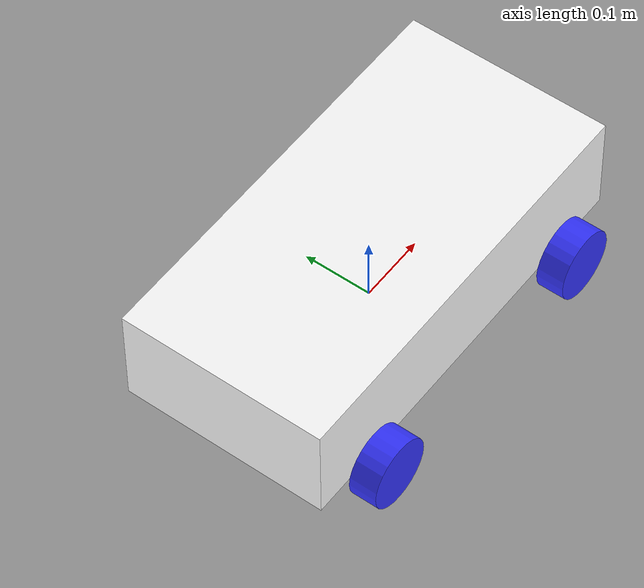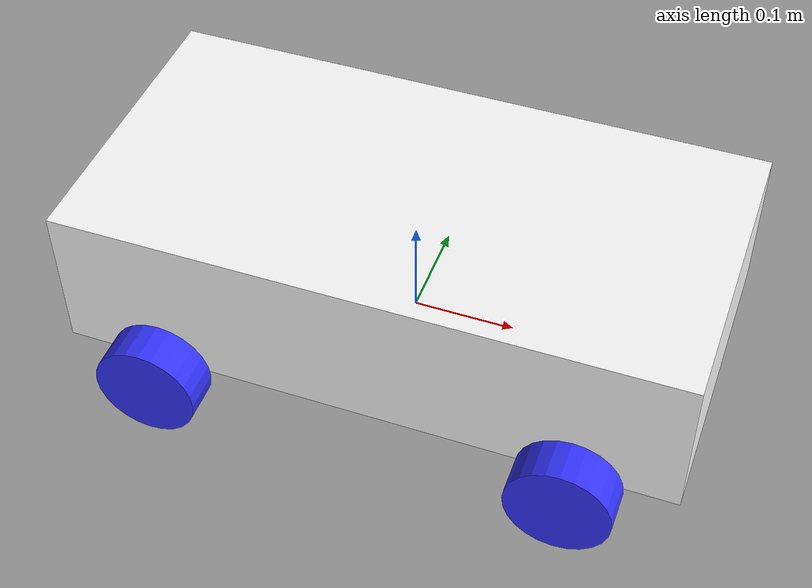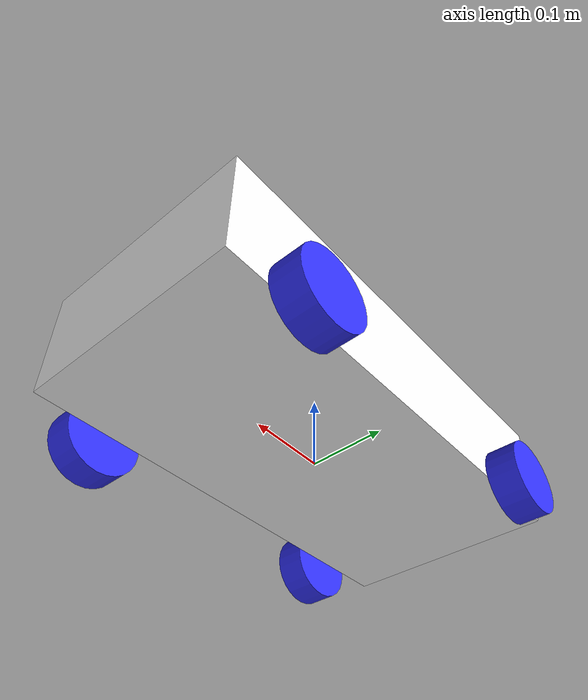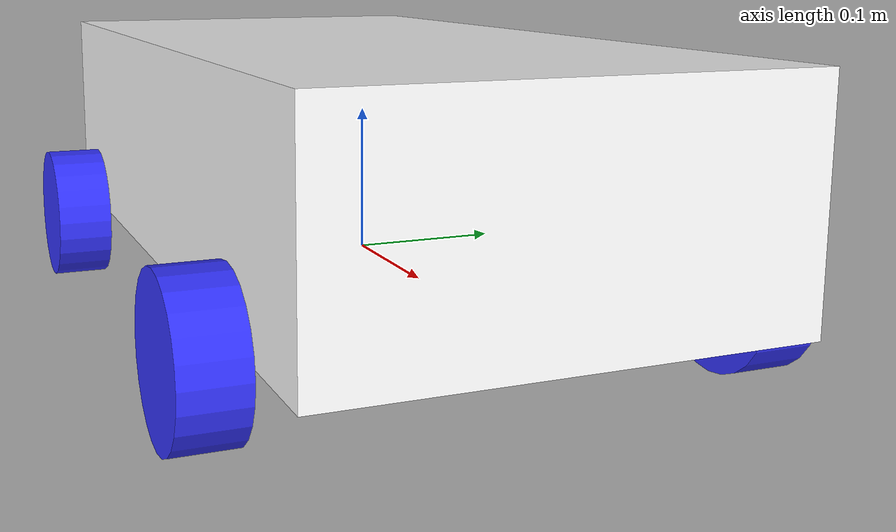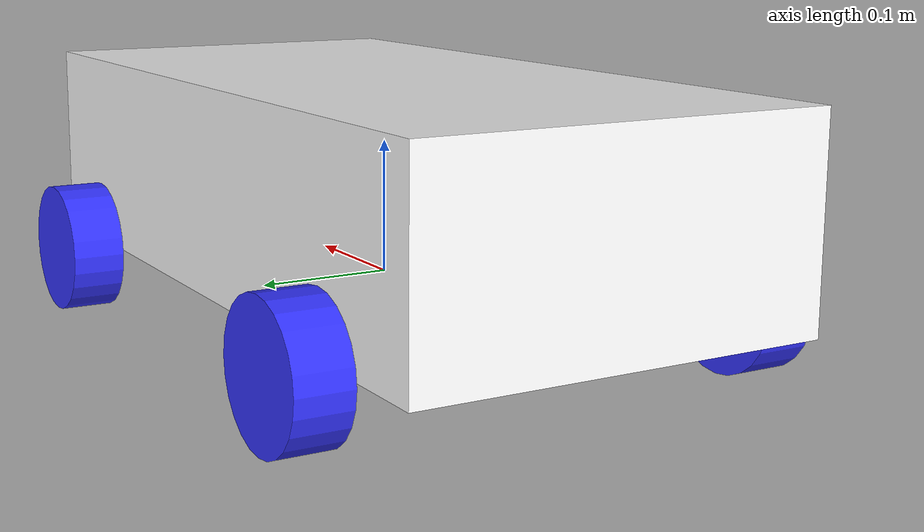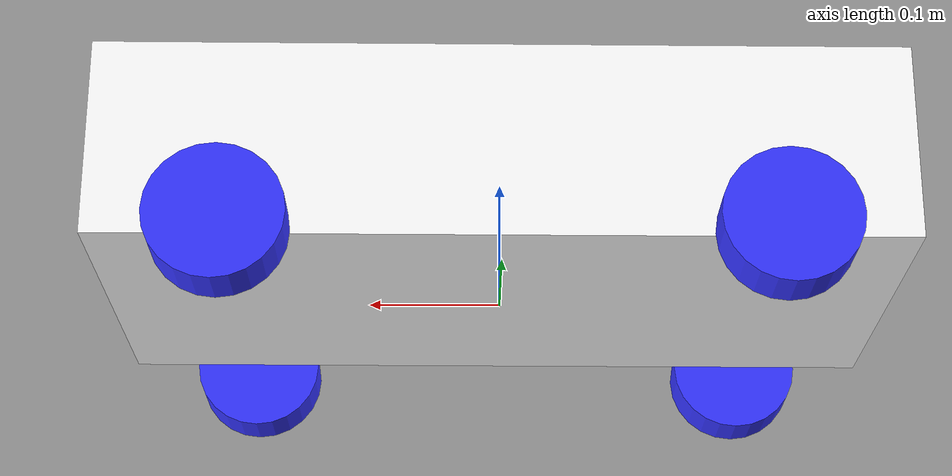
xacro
<?xml version="1.0"?>
<robot xmlns:xacro="http://www.ros.org/wiki/xacro"  name="robot">

    <!-- Example link -->
    <xacro:include filename="robot_core.xacro" />
    <xacro:include filename="gazebo_control.xacro" />
    <xacro:include filename="depth_camera.xacro" />
    <xacro:include filename="ros2_control.xacro" />
    <parameters>$(find Sebastro)/config/my_controllers.yaml</parameters>

</robot>

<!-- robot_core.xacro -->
<robot xmlns:xacro="http://www.ros.org/wiki/xacro">

<xacro:include filename="inertial_macros.xacro"/>

<material name="white">
    <color rgba="1 1 1 1"/>
</material>

<material name="orange">
    <color rgba="1 0.3 0.1 1"/>
</material>

<material name="blue">
    <color rgba="0.2 0.2 1 1"/>
</material>

<material name="black">
    <color rgba="0 0 0 1"/>
</material>

<!-- BASE LINK -->
<link name="base_link">
</link>

<!-- CHASSIS LINK -->

<joint name="chassis_joint" type="fixed">
    <parent link="base_link"/>
    <child link="chassis"/>
    <origin xyz="-0.3 0 0"/>
</joint>

<link name="chassis">
    <visual>
        <origin xyz="0.3 0 0.075" rpy="0 0 0"/>
        <geometry>
            <box size="0.6 0.3 0.15"/>
        </geometry>
        <material name="white"/>
    </visual>
    <collision>
        <origin xyz="0.3 0 0.075" rpy="0 0 0"/>
        <geometry>
            <box size="0.6 0.3 0.15"/>
        </geometry>
    </collision>
    <xacro:inertial_box mass="0.5" x="0.3" y="0.3" z="0.15">
        <origin xyz="0.15 0 0.075" rpy="0 0 0"/>
    </xacro:inertial_box>
</link>

<gazebo reference="chassis">
    <material>Gazebo/White</material>
</gazebo>
<!-- REAR LEFT WHEEL -->

<joint name="rear_left_wheel_joint" type="continuous">
    <parent link="base_link"/>
    <child link="rear_left_wheel"/>
    <origin xyz="-0.2 0.175 0" rpy="-${pi/2} 0 0"/>
    <axis xyz="0 0 1"/>
</joint>

<link name="rear_left_wheel">
    <visual>
        <geometry>
            <cylinder radius="0.05" length="0.04"/>
        </geometry>
        <material name="blue"/>
    </visual>
    <collision>
        <geometry>
            <cylinder radius="0.05" length="0.04"/>
        </geometry>
    </collision>
    <xacro:inertial_cylinder mass="0.1" length="0.05" radius="0.05">
        <origin xyz="0 0 0" rpy="0 0 0"/>
    </xacro:inertial_cylinder>
</link>

<gazebo reference="rear_left_wheel">
    <material>Gazebo/Blue</material>
</gazebo>

<!-- REAR RIGHT WHEEL -->

<joint name="rear_right_wheel_joint" type="continuous">
    <parent link="base_link"/>
    <child link="rear_right_wheel"/>
    <origin xyz="-0.2 -0.175 0" rpy="${pi/2} 0 0"/>
    <axis xyz="0 0 -1"/>
</joint>

<link name="rear_right_wheel">
    <visual>
        <geometry>
            <cylinder radius="0.05" length="0.04"/>
        </geometry>
        <material name="blue"/>
    </visual>
    <collision>
        <geometry>
            <cylinder radius="0.05" length="0.04"/>
        </geometry>
    </collision>
    <xacro:inertial_cylinder mass="0.1" length="0.05" radius="0.05">
        <origin xyz="0 0 0" rpy="0 0 0"/>
    </xacro:inertial_cylinder>
</link>

<gazebo reference="rear_right_wheel">
    <material>Gazebo/Blue</material>
</gazebo>

<!-- FRONT RIGHT WHEEL -->

<joint name="front_right_wheel_joint" type="continuous">
    <parent link="base_link"/>
    <child link="front_right_wheel"/>
    <origin xyz="0.2 -0.175 0" rpy="${pi/2} 0 0"/>
    <axis xyz="0 0 -1"/>
</joint>

<link name="front_right_wheel">
    <visual>
        <geometry>
            <cylinder radius="0.05" length="0.04"/>
        </geometry>
        <material name="blue"/>
    </visual>
    <collision>
        <geometry>
            <cylinder radius="0.05" length="0.04"/>
        </geometry>
    </collision>
    <xacro:inertial_cylinder mass="0.1" length="0.05" radius="0.05">
        <origin xyz="0 0 0" rpy="0 0 0"/>
    </xacro:inertial_cylinder>
</link>

<gazebo reference="front_right_wheel">
    <material>Gazebo/Blue</material>
</gazebo>

<!-- FRONT LEFT WHEEL -->

<joint name="front_left_wheel_joint" type="continuous">
    <parent link="base_link"/>
    <child link="front_left_wheel"/>
    <origin xyz="0.2 0.175 0" rpy="-${pi/2} 0 0"/>
    <axis xyz="0 0 1"/>
</joint>

<link name="front_left_wheel">
    <visual>
        <geometry>
            <cylinder radius="0.05" length="0.04"/>
        </geometry>
        <material name="blue"/>
    </visual>
    <collision>
        <geometry>
            <cylinder radius="0.05" length="0.04"/>
        </geometry>
    </collision>
    <xacro:inertial_cylinder mass="0.1" length="0.05" radius="0.05">
        <origin xyz="0 0 0" rpy="0 0 0"/>
    </xacro:inertial_cylinder>
</link>

<gazebo reference="front_left_wheel">
    <material>Gazebo/Blue</material>
</gazebo>

</robot>

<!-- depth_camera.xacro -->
<robot xmlns:xacro="http://www.ros.org/wiki/xacro" >

    <joint name="camera_joint" type="fixed">
        <parent link="chassis"/>
        <child link="camera_link"/>
        <origin xyz="0.305 0 0.08" rpy="0 0 0"/>
    </joint>

    <link name="camera_link">
        <visual>
            <geometry>
                <box size="0.010 0.03 0.03"/>
            </geometry>
            <material name="red"/>
        </visual>
        <!-- add collision if camera patrudes from chassis -->
    </link>

    <joint name="camera_optical_joint" type="fixed">
        <parent link="camera_link"/>
        <child link="camera_link_optical"/>
        <origin xyz="0 0 0" rpy="${-pi/2} 0 ${-pi/2}"/>
    </joint>

    <link name="camera_link_optical"></link>

    <gazebo reference="camera_link">
        <material>Gazebo/Red</material>

        <sensor name="camera" type="depth">
            <pose> 0 0 0 0 0 0 </pose>
            <visualize>true</visualize>
            <update_rate>10</update_rate>
            <camera>
                <horizontal_fov>1.089</horizontal_fov>
                <image>
                    <format>R8G8B8</format>
                    <width>640</width>
                    <height>480</height>
                </image>
                <clip>
                    <near>0.05</near>
                    <far>8.0</far>
                </clip>
            </camera>
        <plugin name="camera_controller" filename="libgazebo_ros_camera.so">
            <frame_name>camera_link_optical</frame_name>
        </plugin>
        </sensor>
    </gazebo>

</robot>
